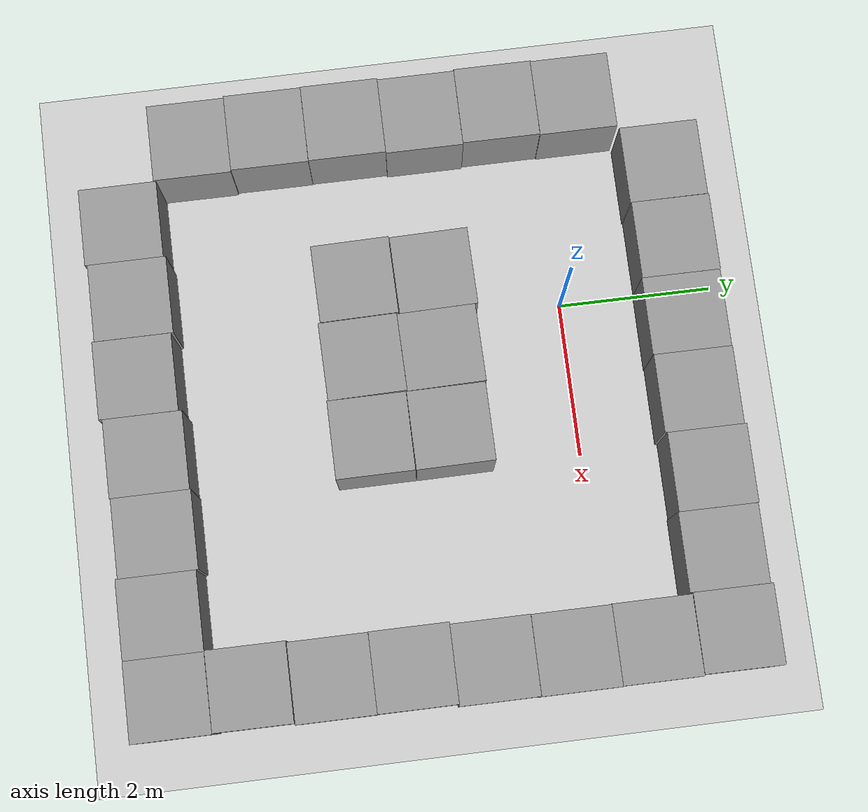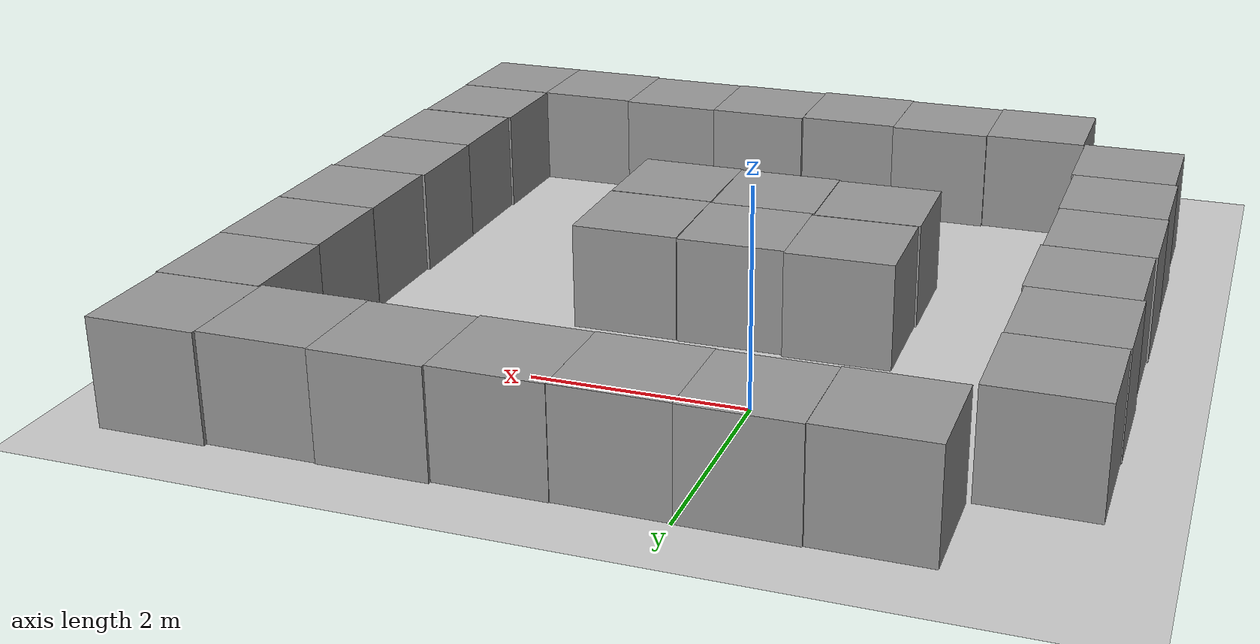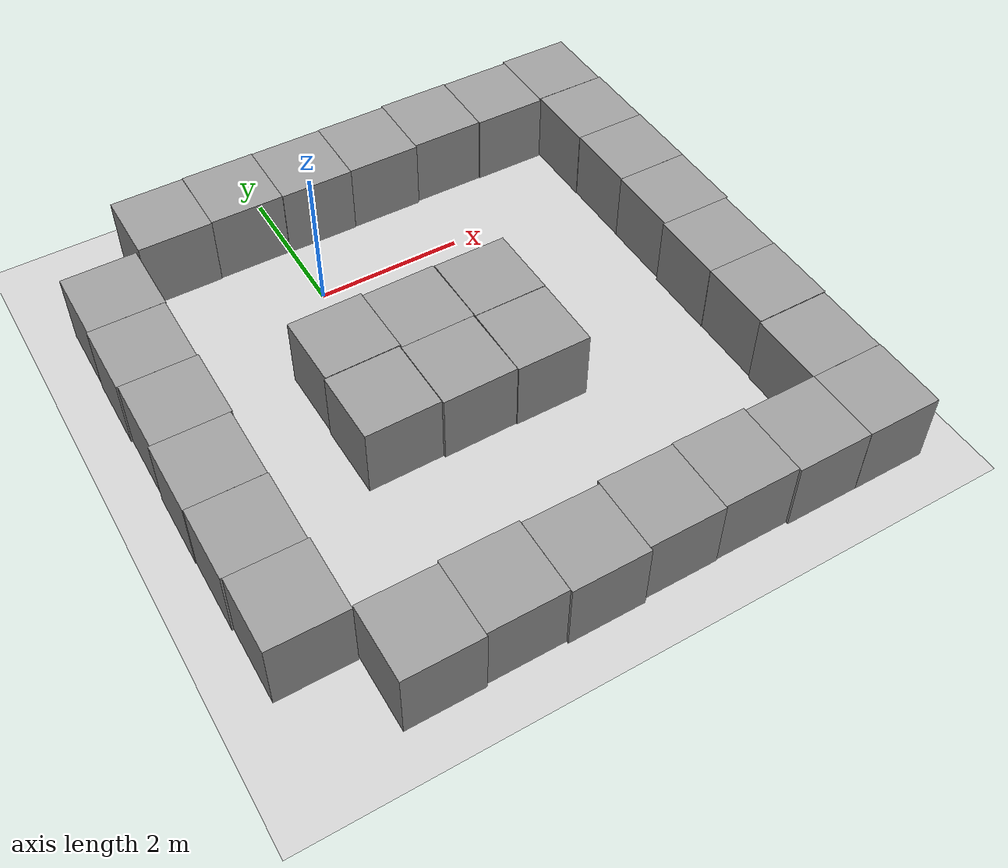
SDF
<sdf version="1.7">
 <world name="default">
  <light name="sun" type="directional">
   <pose>0 0 10 0 -0 0</pose>
   <diffuse>0.8 0.8 0.8 1</diffuse>
   <specular>0.2 0.2 0.2 1</specular>
   <attenuation>
    <range>1000</range>
    <constant>0.9</constant>
    <linear>0.01</linear>
    <quadratic>0.001</quadratic>
   </attenuation>
   <direction>-0.5 0.1 -0.9</direction>
   <spot><inner_angle>0</inner_angle><outer_angle>0</outer_angle><falloff>0</falloff></spot>
  </light>
  <model name="ground_plane">
   <static>1</static>
   <link name="link">
    <collision name="collision">
     <geometry><plane><normal>0 0 1</normal><size>100 100</size></plane></geometry>
     <surface><friction><ode><mu>100</mu><mu2>50</mu2></ode></friction></surface>
    </collision>
    <visual name="visual">
     <cast_shadows>0</cast_shadows>
     <geometry><plane><normal>0 0 1</normal><size>100 100</size></plane></geometry>
     <material>
      <script><uri>file://media/materials/scripts/gazebo.material</uri><name>Gazebo/Grey</name></script>
     </material>
    </visual>
   </link>
  </model>
  <gravity>0 0 -9.8</gravity>
  <magnetic_field>6e-06 2.3e-05 -4.2e-05</magnetic_field>
  <atmosphere type="adiabatic"/>
  <physics type="ode">
   <max_step_size>0.001</max_step_size>
   <real_time_factor>1</real_time_factor>
   <real_time_update_rate>1000</real_time_update_rate>
  </physics>
  <scene><ambient>0.4 0.4 0.4 1</ambient><background>0.7 0.7 0.7 1</background><shadows>1</shadows></scene>
  <audio><device>default</device></audio>
  <spherical_coordinates>
   <surface_model>EARTH_WGS84</surface_model>
   <latitude_deg>0</latitude_deg>
   <longitude_deg>0</longitude_deg>
   <elevation>0</elevation>
   <heading_deg>0</heading_deg>
  </spherical_coordinates>
  <model name="unit_box">
   <pose>-0.515394 1.49191 0.499995 -0 -1e-05 -0.00319</pose>
   <link name="link">
    <inertial>
     <mass>1</mass>
     <inertia>
      <ixx>0.166667</ixx>
      <ixy>0</ixy>
      <ixz>0</ixz>
      <iyy>0.166667</iyy>
      <iyz>0</iyz>
      <izz>0.166667</izz>
     </inertia>
    </inertial>
    <collision name="collision"><geometry><box><size>1 1 1</size></box></geometry></collision>
    <visual name="visual">
     <geometry><box><size>1 1 1</size></box></geometry>
     <material>
      <script><name>Gazebo/Grey</name><uri>file://media/materials/scripts/gazebo.material</uri></script>
     </material>
    </visual>
   </link>
  </model>
  <model name="unit_box_0">
   <pose>0.48473 1.4812 0.499995 1e-05 0 -0.003456</pose>
   <link name="link">
    <inertial>
     <mass>1</mass>
     <inertia>
      <ixx>0.166667</ixx>
      <ixy>0</ixy>
      <ixz>0</ixz>
      <iyy>0.166667</iyy>
      <iyz>0</iyz>
      <izz>0.166667</izz>
     </inertia>
    </inertial>
    <collision name="collision"><geometry><box><size>1 1 1</size></box></geometry></collision>
    <visual name="visual">
     <geometry><box><size>1 1 1</size></box></geometry>
     <material>
      <script><name>Gazebo/Grey</name><uri>file://media/materials/scripts/gazebo.material</uri></script>
     </material>
    </visual>
   </link>
  </model>
  <model name="unit_box_1">
   <pose>1.48479 1.48592 0.499995 0 1e-05 -0.003506</pose>
   <link name="link">
    <inertial>
     <mass>1</mass>
     <inertia>
      <ixx>0.166667</ixx>
      <ixy>0</ixy>
      <ixz>0</ixz>
      <iyy>0.166667</iyy>
      <iyz>0</iyz>
      <izz>0.166667</izz>
     </inertia>
    </inertial>
    <collision name="collision"><geometry><box><size>1 1 1</size></box></geometry></collision>
    <visual name="visual">
     <geometry><box><size>1 1 1</size></box></geometry>
     <material>
      <script><name>Gazebo/Grey</name><uri>file://media/materials/scripts/gazebo.material</uri></script>
     </material>
    </visual>
   </link>
  </model>
  <model name="unit_box_2">
   <pose>2.4849 1.51093 0.499995 0 -1e-05 -0.003545</pose>
   <link name="link">
    <inertial>
     <mass>1</mass>
     <inertia>
      <ixx>0.166667</ixx>
      <ixy>0</ixy>
      <ixz>0</ixz>
      <iyy>0.166667</iyy>
      <iyz>0</iyz>
      <izz>0.166667</izz>
     </inertia>
    </inertial>
    <collision name="collision"><geometry><box><size>1 1 1</size></box></geometry></collision>
    <visual name="visual">
     <geometry><box><size>1 1 1</size></box></geometry>
     <material>
      <script><name>Gazebo/Grey</name><uri>file://media/materials/scripts/gazebo.material</uri></script>
     </material>
    </visual>
   </link>
  </model>
  <model name="unit_box_3">
   <pose>3.48497 1.49604 0.499995 0 1e-05 -0.003489</pose>
   <link name="link">
    <inertial>
     <mass>1</mass>
     <inertia>
      <ixx>0.166667</ixx>
      <ixy>0</ixy>
      <ixz>0</ixz>
      <iyy>0.166667</iyy>
      <iyz>0</iyz>
      <izz>0.166667</izz>
     </inertia>
    </inertial>
    <collision name="collision"><geometry><box><size>1 1 1</size></box></geometry></collision>
    <visual name="visual">
     <geometry><box><size>1 1 1</size></box></geometry>
     <material>
      <script><name>Gazebo/Grey</name><uri>file://media/materials/scripts/gazebo.material</uri></script>
     </material>
    </visual>
   </link>
  </model>
  <model name="unit_box_4">
   <pose>4.48521 1.52919 0.499995 0 1e-05 -0.003645</pose>
   <link name="link">
    <inertial>
     <mass>1</mass>
     <inertia>
      <ixx>0.166667</ixx>
      <ixy>0</ixy>
      <ixz>0</ixz>
      <iyy>0.166667</iyy>
      <iyz>0</iyz>
      <izz>0.166667</izz>
     </inertia>
    </inertial>
    <collision name="collision"><geometry><box><size>1 1 1</size></box></geometry></collision>
    <visual name="visual">
     <geometry><box><size>1 1 1</size></box></geometry>
     <material>
      <script><name>Gazebo/Grey</name><uri>file://media/materials/scripts/gazebo.material</uri></script>
     </material>
    </visual>
   </link>
  </model>
  <model name="unit_box_5">
   <pose>4.50104 0.526487 0.499995 -1e-05 -0 6.2e-05</pose>
   <link name="link">
    <inertial>
     <mass>1</mass>
     <inertia>
      <ixx>0.166667</ixx>
      <ixy>0</ixy>
      <ixz>0</ixz>
      <iyy>0.166667</iyy>
      <iyz>0</iyz>
      <izz>0.166667</izz>
     </inertia>
    </inertial>
    <collision name="collision"><geometry><box><size>1 1 1</size></box></geometry></collision>
    <visual name="visual">
     <geometry><box><size>1 1 1</size></box></geometry>
     <material>
      <script><name>Gazebo/Grey</name><uri>file://media/materials/scripts/gazebo.material</uri></script>
     </material>
    </visual>
   </link>
  </model>
  <model name="unit_box_6">
   <pose>4.50709 -0.473521 0.499995 -1e-05 -0 7.9e-05</pose>
   <link name="link">
    <inertial>
     <mass>1</mass>
     <inertia>
      <ixx>0.166667</ixx>
      <ixy>0</ixy>
      <ixz>0</ixz>
      <iyy>0.166667</iyy>
      <iyz>0</iyz>
      <izz>0.166667</izz>
     </inertia>
    </inertial>
    <collision name="collision"><geometry><box><size>1 1 1</size></box></geometry></collision>
    <visual name="visual">
     <geometry><box><size>1 1 1</size></box></geometry>
     <material>
      <script><name>Gazebo/Grey</name><uri>file://media/materials/scripts/gazebo.material</uri></script>
     </material>
    </visual>
   </link>
  </model>
  <model name="unit_box_7">
   <pose>4.50333 -1.47392 0.499995 0 1e-05 -0.000146</pose>
   <link name="link">
    <inertial>
     <mass>1</mass>
     <inertia>
      <ixx>0.166667</ixx>
      <ixy>0</ixy>
      <ixz>0</ixz>
      <iyy>0.166667</iyy>
      <iyz>0</iyz>
      <izz>0.166667</izz>
     </inertia>
    </inertial>
    <collision name="collision"><geometry><box><size>1 1 1</size></box></geometry></collision>
    <visual name="visual">
     <geometry><box><size>1 1 1</size></box></geometry>
     <material>
      <script><name>Gazebo/Grey</name><uri>file://media/materials/scripts/gazebo.material</uri></script>
     </material>
    </visual>
   </link>
  </model>
  <model name="unit_box_8">
   <pose>4.47553 -2.47392 0.499995 0 1e-05 -0.000146</pose>
   <link name="link">
    <inertial>
     <mass>1</mass>
     <inertia>
      <ixx>0.166667</ixx>
      <ixy>0</ixy>
      <ixz>0</ixz>
      <iyy>0.166667</iyy>
      <iyz>0</iyz>
      <izz>0.166667</izz>
     </inertia>
    </inertial>
    <collision name="collision"><geometry><box><size>1 1 1</size></box></geometry></collision>
    <visual name="visual">
     <geometry><box><size>1 1 1</size></box></geometry>
     <material>
      <script><name>Gazebo/Grey</name><uri>file://media/materials/scripts/gazebo.material</uri></script>
     </material>
    </visual>
   </link>
  </model>
  <model name="unit_box_9">
   <pose>4.47981 -3.47401 0.499995 0 1e-05 3.8e-05</pose>
   <link name="link">
    <inertial>
     <mass>1</mass>
     <inertia>
      <ixx>0.166667</ixx>
      <ixy>0</ixy>
      <ixz>0</ixz>
      <iyy>0.166667</iyy>
      <iyz>0</iyz>
      <izz>0.166667</izz>
     </inertia>
    </inertial>
    <collision name="collision"><geometry><box><size>1 1 1</size></box></geometry></collision>
    <visual name="visual">
     <geometry><box><size>1 1 1</size></box></geometry>
     <material>
      <script><name>Gazebo/Grey</name><uri>file://media/materials/scripts/gazebo.material</uri></script>
     </material>
    </visual>
   </link>
  </model>
  <model name="unit_box_10">
   <pose>1.56977 -1.64972 0.499995 1e-05 -0 0.007291</pose>
   <link name="link">
    <inertial>
     <mass>1</mass>
     <inertia>
      <ixx>0.166667</ixx>
      <ixy>0</ixy>
      <ixz>0</ixz>
      <iyy>0.166667</iyy>
      <iyz>0</iyz>
      <izz>0.166667</izz>
     </inertia>
    </inertial>
    <collision name="collision"><geometry><box><size>1 1 1</size></box></geometry></collision>
    <visual name="visual">
     <geometry><box><size>1 1 1</size></box></geometry>
     <material>
      <script><name>Gazebo/Grey</name><uri>file://media/materials/scripts/gazebo.material</uri></script>
     </material>
    </visual>
   </link>
  </model>
  <model name="unit_box_11">
   <pose>1.57234 -2.65461 0.499995 1e-05 0 0.001606</pose>
   <link name="link">
    <inertial>
     <mass>1</mass>
     <inertia>
      <ixx>0.166667</ixx>
      <ixy>0</ixy>
      <ixz>0</ixz>
      <iyy>0.166667</iyy>
      <iyz>0</iyz>
      <izz>0.166667</izz>
     </inertia>
    </inertial>
    <collision name="collision"><geometry><box><size>1 1 1</size></box></geometry></collision>
    <visual name="visual">
     <geometry><box><size>1 1 1</size></box></geometry>
     <material>
      <script><name>Gazebo/Grey</name><uri>file://media/materials/scripts/gazebo.material</uri></script>
     </material>
    </visual>
   </link>
  </model>
  <model name="unit_box_12">
   <pose>0.563663 -1.64663 0.499995 0 -1e-05 0.015389</pose>
   <link name="link">
    <inertial>
     <mass>1</mass>
     <inertia>
      <ixx>0.166667</ixx>
      <ixy>0</ixy>
      <ixz>0</ixz>
      <iyy>0.166667</iyy>
      <iyz>0</iyz>
      <izz>0.166667</izz>
     </inertia>
    </inertial>
    <collision name="collision"><geometry><box><size>1 1 1</size></box></geometry></collision>
    <visual name="visual">
     <geometry><box><size>1 1 1</size></box></geometry>
     <material>
      <script><name>Gazebo/Grey</name><uri>file://media/materials/scripts/gazebo.material</uri></script>
     </material>
    </visual>
   </link>
  </model>
  <model name="unit_box_13">
   <pose>0.565698 -2.64694 0.499995 0 1e-05 0.014952</pose>
   <link name="link">
    <inertial>
     <mass>1</mass>
     <inertia>
      <ixx>0.166667</ixx>
      <ixy>0</ixy>
      <ixz>0</ixz>
      <iyy>0.166667</iyy>
      <iyz>0</iyz>
      <izz>0.166667</izz>
     </inertia>
    </inertial>
    <collision name="collision"><geometry><box><size>1 1 1</size></box></geometry></collision>
    <visual name="visual">
     <geometry><box><size>1 1 1</size></box></geometry>
     <material>
      <script><name>Gazebo/Grey</name><uri>file://media/materials/scripts/gazebo.material</uri></script>
     </material>
    </visual>
   </link>
  </model>
  <model name="unit_box_14">
   <pose>-0.436979 -1.62424 0.499995 1e-05 -0 0.01568</pose>
   <link name="link">
    <inertial>
     <mass>1</mass>
     <inertia>
      <ixx>0.166667</ixx>
      <ixy>0</ixy>
      <ixz>0</ixz>
      <iyy>0.166667</iyy>
      <iyz>0</iyz>
      <izz>0.166667</izz>
     </inertia>
    </inertial>
    <collision name="collision"><geometry><box><size>1 1 1</size></box></geometry></collision>
    <visual name="visual">
     <geometry><box><size>1 1 1</size></box></geometry>
     <material>
      <script><name>Gazebo/Grey</name><uri>file://media/materials/scripts/gazebo.material</uri></script>
     </material>
    </visual>
   </link>
  </model>
  <model name="unit_box_15">
   <pose>-0.440194 -2.63239 0.499995 0 -1e-05 0.014472</pose>
   <link name="link">
    <inertial>
     <mass>1</mass>
     <inertia>
      <ixx>0.166667</ixx>
      <ixy>0</ixy>
      <ixz>0</ixz>
      <iyy>0.166667</iyy>
      <iyz>0</iyz>
      <izz>0.166667</izz>
     </inertia>
    </inertial>
    <collision name="collision"><geometry><box><size>1 1 1</size></box></geometry></collision>
    <visual name="visual">
     <geometry><box><size>1 1 1</size></box></geometry>
     <material>
      <script><name>Gazebo/Grey</name><uri>file://media/materials/scripts/gazebo.material</uri></script>
     </material>
    </visual>
   </link>
  </model>
  <model name="unit_box_16">
   <pose>4.45883 -4.48191 0.499995 0 -1e-05 -0.002639</pose>
   <link name="link">
    <inertial>
     <mass>1</mass>
     <inertia>
      <ixx>0.166667</ixx>
      <ixy>0</ixy>
      <ixz>0</ixz>
      <iyy>0.166667</iyy>
      <iyz>0</iyz>
      <izz>0.166667</izz>
     </inertia>
    </inertial>
    <collision name="collision"><geometry><box><size>1 1 1</size></box></geometry></collision>
    <visual name="visual">
     <geometry><box><size>1 1 1</size></box></geometry>
     <material>
      <script><name>Gazebo/Grey</name><uri>file://media/materials/scripts/gazebo.material</uri></script>
     </material>
    </visual>
   </link>
  </model>
  <model name="unit_box_17">
   <pose>2.46868 -5.44949 0.499995 0 1e-05 -0.000631</pose>
   <link name="link">
    <inertial>
     <mass>1</mass>
     <inertia>
      <ixx>0.166667</ixx>
      <ixy>0</ixy>
      <ixz>0</ixz>
      <iyy>0.166667</iyy>
      <iyz>0</iyz>
      <izz>0.166667</izz>
     </inertia>
    </inertial>
    <collision name="collision"><geometry><box><size>1 1 1</size></box></geometry></collision>
    <visual name="visual">
     <geometry><box><size>1 1 1</size></box></geometry>
     <material>
      <script><name>Gazebo/Grey</name><uri>file://media/materials/scripts/gazebo.material</uri></script>
     </material>
    </visual>
   </link>
  </model>
  <model name="unit_box_18">
   <pose>4.46866 -5.48312 0.5 -0 -0 -0.000642</pose>
   <link name="link">
    <inertial>
     <mass>1</mass>
     <inertia>
      <ixx>0.166667</ixx>
      <ixy>0</ixy>
      <ixz>0</ixz>
      <iyy>0.166667</iyy>
      <iyz>0</iyz>
      <izz>0.166667</izz>
     </inertia>
    </inertial>
    <collision name="collision"><geometry><box><size>1 1 1</size></box></geometry></collision>
    <visual name="visual">
     <geometry><box><size>1 1 1</size></box></geometry>
     <material>
      <script><name>Gazebo/Grey</name><uri>file://media/materials/scripts/gazebo.material</uri></script>
     </material>
    </visual>
   </link>
  </model>
  <model name="unit_box_19">
   <pose>3.46866 -5.48031 0.499995 -1e-05 0 -0.000642</pose>
   <link name="link">
    <inertial>
     <mass>1</mass>
     <inertia>
      <ixx>0.166667</ixx>
      <ixy>0</ixy>
      <ixz>0</ixz>
      <iyy>0.166667</iyy>
      <iyz>0</iyz>
      <izz>0.166667</izz>
     </inertia>
    </inertial>
    <collision name="collision"><geometry><box><size>1 1 1</size></box></geometry></collision>
    <visual name="visual">
     <geometry><box><size>1 1 1</size></box></geometry>
     <material>
      <script><name>Gazebo/Grey</name><uri>file://media/materials/scripts/gazebo.material</uri></script>
     </material>
    </visual>
   </link>
  </model>
  <model name="unit_box_20">
   <pose>1.46864 -5.46212 0.5 0 0 -0.000587</pose>
   <link name="link">
    <inertial>
     <mass>1</mass>
     <inertia>
      <ixx>0.166667</ixx>
      <ixy>0</ixy>
      <ixz>0</ixz>
      <iyy>0.166667</iyy>
      <iyz>0</iyz>
      <izz>0.166667</izz>
     </inertia>
    </inertial>
    <collision name="collision"><geometry><box><size>1 1 1</size></box></geometry></collision>
    <visual name="visual">
     <geometry><box><size>1 1 1</size></box></geometry>
     <material>
      <script><name>Gazebo/Grey</name><uri>file://media/materials/scripts/gazebo.material</uri></script>
     </material>
    </visual>
   </link>
  </model>
  <model name="unit_box_21">
   <pose>0.468361 -5.50541 0.5 -0 -0 -4.8e-05</pose>
   <link name="link">
    <inertial>
     <mass>1</mass>
     <inertia>
      <ixx>0.166667</ixx>
      <ixy>0</ixy>
      <ixz>0</ixz>
      <iyy>0.166667</iyy>
      <iyz>0</iyz>
      <izz>0.166667</izz>
     </inertia>
    </inertial>
    <collision name="collision"><geometry><box><size>1 1 1</size></box></geometry></collision>
    <visual name="visual">
     <geometry><box><size>1 1 1</size></box></geometry>
     <material>
      <script><name>Gazebo/Grey</name><uri>file://media/materials/scripts/gazebo.material</uri></script>
     </material>
    </visual>
   </link>
  </model>
  <model name="unit_box_22">
   <pose>-0.532182 -5.47473 0.499995 -1e-05 -0 0.000372</pose>
   <link name="link">
    <inertial>
     <mass>1</mass>
     <inertia>
      <ixx>0.166667</ixx>
      <ixy>0</ixy>
      <ixz>0</ixz>
      <iyy>0.166667</iyy>
      <iyz>0</iyz>
      <izz>0.166667</izz>
     </inertia>
    </inertial>
    <collision name="collision"><geometry><box><size>1 1 1</size></box></geometry></collision>
    <visual name="visual">
     <geometry><box><size>1 1 1</size></box></geometry>
     <material>
      <script><name>Gazebo/Grey</name><uri>file://media/materials/scripts/gazebo.material</uri></script>
     </material>
    </visual>
   </link>
  </model>
  <model name="unit_box_23">
   <pose>-1.53217 -5.50622 0.499995 -1e-05 -0 0.000372</pose>
   <link name="link">
    <inertial>
     <mass>1</mass>
     <inertia>
      <ixx>0.166667</ixx>
      <ixy>0</ixy>
      <ixz>0</ixz>
      <iyy>0.166667</iyy>
      <iyz>0</iyz>
      <izz>0.166667</izz>
     </inertia>
    </inertial>
    <collision name="collision"><geometry><box><size>1 1 1</size></box></geometry></collision>
    <visual name="visual">
     <geometry><box><size>1 1 1</size></box></geometry>
     <material>
      <script><name>Gazebo/Grey</name><uri>file://media/materials/scripts/gazebo.material</uri></script>
     </material>
    </visual>
   </link>
  </model>
  <model name="unit_box_24">
   <pose>-2.54779 -1.53961 0.499931 -0 -0 -0.001825</pose>
   <link name="link">
    <inertial>
     <mass>1</mass>
     <inertia>
      <ixx>0.166667</ixx>
      <ixy>0</ixy>
      <ixz>0</ixz>
      <iyy>0.166667</iyy>
      <iyz>0</iyz>
      <izz>0.166667</izz>
     </inertia>
    </inertial>
    <collision name="collision"><geometry><box><size>1 1 1</size></box></geometry></collision>
    <visual name="visual">
     <geometry><box><size>1 1 1</size></box></geometry>
     <material>
      <script><name>Gazebo/Grey</name><uri>file://media/materials/scripts/gazebo.material</uri></script>
     </material>
    </visual>
   </link>
  </model>
  <model name="unit_box_25">
   <pose>-2.5687 -2.53957 0.5 0 -0 -0.001826</pose>
   <link name="link">
    <inertial>
     <mass>1</mass>
     <inertia>
      <ixx>0.166667</ixx>
      <ixy>0</ixy>
      <ixz>0</ixz>
      <iyy>0.166667</iyy>
      <iyz>0</iyz>
      <izz>0.166667</izz>
     </inertia>
    </inertial>
    <collision name="collision"><geometry><box><size>1 1 1</size></box></geometry></collision>
    <visual name="visual">
     <geometry><box><size>1 1 1</size></box></geometry>
     <material>
      <script><name>Gazebo/Grey</name><uri>file://media/materials/scripts/gazebo.material</uri></script>
     </material>
    </visual>
   </link>
  </model>
  <model name="unit_box_26">
   <pose>-2.56304 -3.54001 0.499995 1e-05 0 -0.002613</pose>
   <link name="link">
    <inertial>
     <mass>1</mass>
     <inertia>
      <ixx>0.166667</ixx>
      <ixy>0</ixy>
      <ixz>0</ixz>
      <iyy>0.166667</iyy>
      <iyz>0</iyz>
      <izz>0.166667</izz>
     </inertia>
    </inertial>
    <collision name="collision"><geometry><box><size>1 1 1</size></box></geometry></collision>
    <visual name="visual">
     <geometry><box><size>1 1 1</size></box></geometry>
     <material>
      <script><name>Gazebo/Grey</name><uri>file://media/materials/scripts/gazebo.material</uri></script>
     </material>
    </visual>
   </link>
  </model>
  <model name="unit_box_27">
   <pose>-2.54353 -4.54011 0.499995 0 1e-05 -0.002663</pose>
   <link name="link">
    <inertial>
     <mass>1</mass>
     <inertia>
      <ixx>0.166667</ixx>
      <ixy>0</ixy>
      <ixz>0</ixz>
      <iyy>0.166667</iyy>
      <iyz>0</iyz>
      <izz>0.166667</izz>
     </inertia>
    </inertial>
    <collision name="collision"><geometry><box><size>1 1 1</size></box></geometry></collision>
    <visual name="visual">
     <geometry><box><size>1 1 1</size></box></geometry>
     <material>
      <script><name>Gazebo/Grey</name><uri>file://media/materials/scripts/gazebo.material</uri></script>
     </material>
    </visual>
   </link>
  </model>
  <model name="unit_box_28">
   <pose>-1.51668 1.4814 0.499995 -1e-05 -0 -0.000891</pose>
   <link name="link">
    <inertial>
     <mass>1</mass>
     <inertia>
      <ixx>0.166667</ixx>
      <ixy>0</ixy>
      <ixz>0</ixz>
      <iyy>0.166667</iyy>
      <iyz>0</iyz>
      <izz>0.166667</izz>
     </inertia>
    </inertial>
    <collision name="collision"><geometry><box><size>1 1 1</size></box></geometry></collision>
    <visual name="visual">
     <geometry><box><size>1 1 1</size></box></geometry>
     <material>
      <script><name>Gazebo/Grey</name><uri>file://media/materials/scripts/gazebo.material</uri></script>
     </material>
    </visual>
   </link>
  </model>
  <model name="unit_box_29">
   <pose>-2.56551 -0.539426 0.499951 -0 -0 -0.001529</pose>
   <link name="link">
    <inertial>
     <mass>1</mass>
     <inertia>
      <ixx>0.166667</ixx>
      <ixy>0</ixy>
      <ixz>0</ixz>
      <iyy>0.166667</iyy>
      <iyz>0</iyz>
      <izz>0.166667</izz>
     </inertia>
    </inertial>
    <collision name="collision"><geometry><box><size>1 1 1</size></box></geometry></collision>
    <visual name="visual">
     <geometry><box><size>1 1 1</size></box></geometry>
     <material>
      <script><name>Gazebo/Grey</name><uri>file://media/materials/scripts/gazebo.material</uri></script>
     </material>
    </visual>
   </link>
  </model>
  <model name="unit_box_30">
   <pose>-2.55404 0.460885 0.499995 -1e-05 -0 -0.000887</pose>
   <link name="link">
    <inertial>
     <mass>1</mass>
     <inertia>
      <ixx>0.166667</ixx>
      <ixy>0</ixy>
      <ixz>0</ixz>
      <iyy>0.166667</iyy>
      <iyz>0</iyz>
      <izz>0.166667</izz>
     </inertia>
    </inertial>
    <collision name="collision"><geometry><box><size>1 1 1</size></box></geometry></collision>
    <visual name="visual">
     <geometry><box><size>1 1 1</size></box></geometry>
     <material>
      <script><name>Gazebo/Grey</name><uri>file://media/materials/scripts/gazebo.material</uri></script>
     </material>
    </visual>
   </link>
  </model>
 </world>
</sdf>
